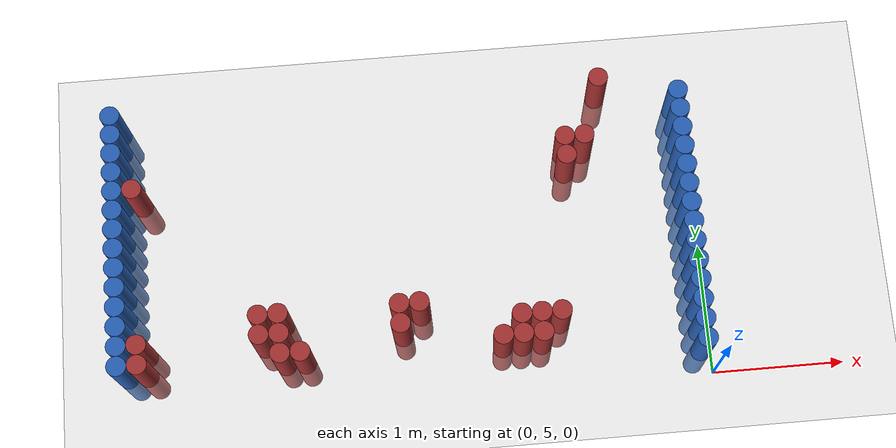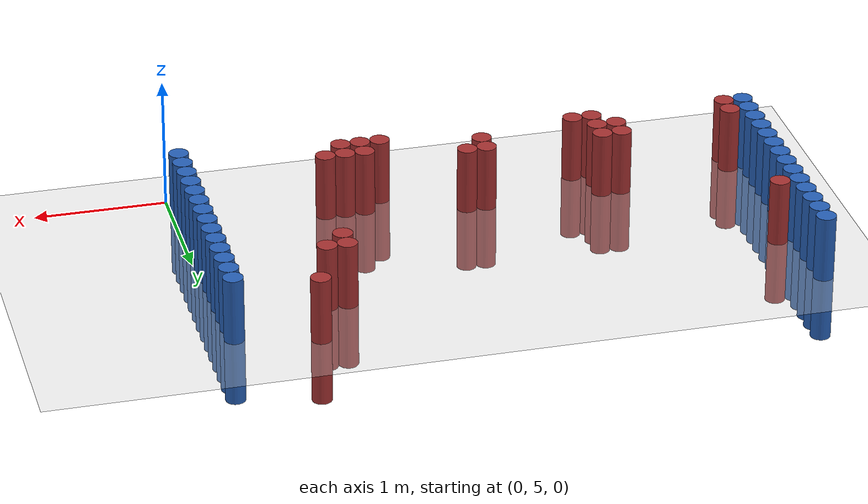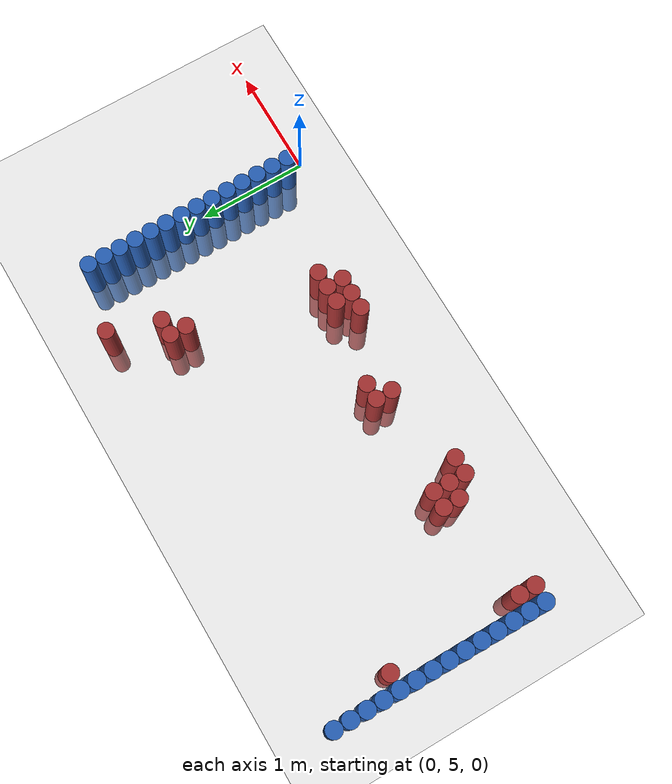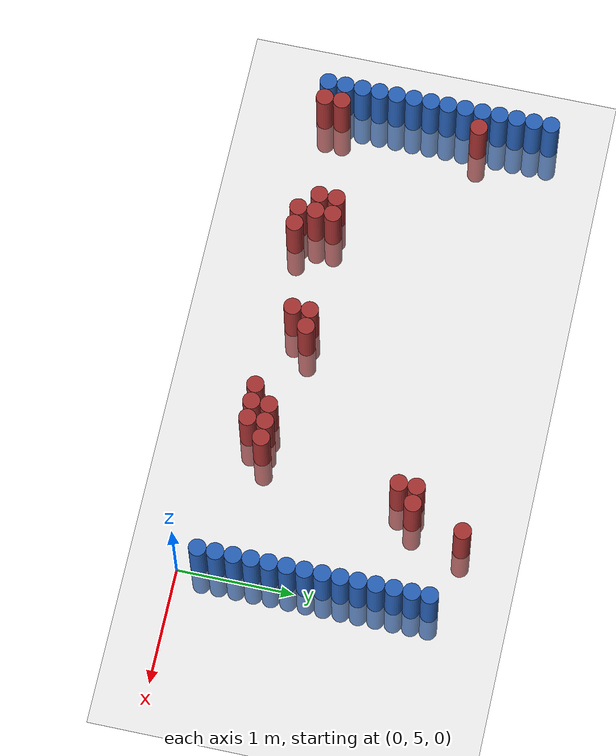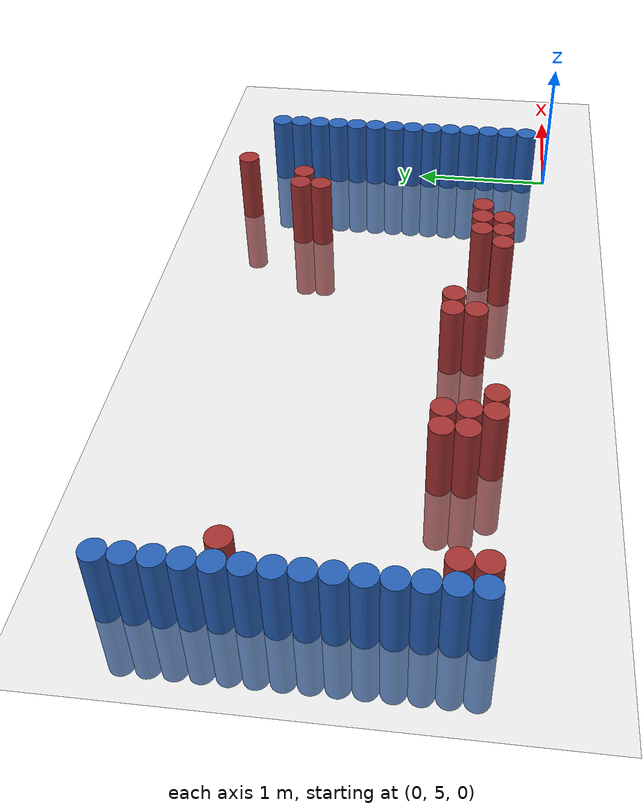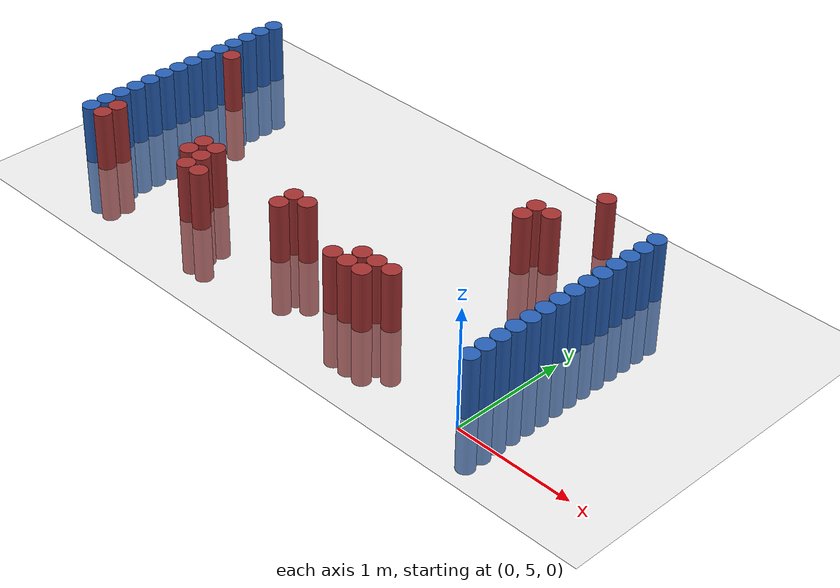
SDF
<sdf version="1.6">
 <world name="default">
  <model name="ground_plane">
   <static>1</static>
   <link name="link">
    <collision name="collision">
     <geometry><plane><normal>0 0 1</normal><size>100 100</size></plane></geometry>
     <surface><friction><ode><mu>100</mu><mu2>50</mu2></ode></friction></surface>
    </collision>
    <visual name="visual">
     <cast_shadows>0</cast_shadows>
     <geometry><plane><normal>0 0 1</normal><size>100 100</size></plane></geometry>
     <material>
      <script><uri>file://media/materials/scripts/gazebo.material</uri><name>Gazebo/Grey</name></script>
     </material>
    </visual>
   </link>
  </model>
  <model name="unit_cylinder_97">
   <static>1</static>
   <pose>-4.425000 5.325000 0.000000 0.000000 0.000000 0.000000</pose>
   <link name="link">
    <inertial>
     <mass>1</mass>
     <inertia><ixx>0.145833</ixx><ixy>0</ixy><ixz>0</ixz><iyy>0.145833</iyy><iyz>0</iyz><izz>0.125</izz></inertia>
    </inertial>
    <collision name="collision">
     <geometry><cylinder><radius>0.075000</radius><length>1</length></cylinder></geometry>
    </collision>
    <visual name="visual">
     <geometry><cylinder><radius>0.075000</radius><length>1</length></cylinder></geometry>
     <material>
      <ambient>0.152000 0.379000 0.720000 1</ambient>
      <diffuse>0.152000 0.379000 0.720000 1</diffuse>
     </material>
     <material>
      <script><name>Gazebo/Grey</name><uri>file://media/materials/scripts/gazebo.material</uri></script>
     </material>
    </visual>
   </link>
  </model>
  <model name="unit_cylinder_98">
   <static>1</static>
   <pose>-4.425000 5.475000 0.000000 0.000000 0.000000 0.000000</pose>
   <link name="link">
    <inertial>
     <mass>1</mass>
     <inertia><ixx>0.145833</ixx><ixy>0</ixy><ixz>0</ixz><iyy>0.145833</iyy><iyz>0</iyz><izz>0.125</izz></inertia>
    </inertial>
    <collision name="collision">
     <geometry><cylinder><radius>0.075000</radius><length>1</length></cylinder></geometry>
    </collision>
    <visual name="visual">
     <geometry><cylinder><radius>0.075000</radius><length>1</length></cylinder></geometry>
     <material>
      <ambient>0.152000 0.379000 0.720000 1</ambient>
      <diffuse>0.152000 0.379000 0.720000 1</diffuse>
     </material>
     <material>
      <script><name>Gazebo/Grey</name><uri>file://media/materials/scripts/gazebo.material</uri></script>
     </material>
    </visual>
   </link>
  </model>
  <model name="unit_cylinder_99">
   <static>1</static>
   <pose>-4.425000 5.625000 0.000000 0.000000 0.000000 0.000000</pose>
   <link name="link">
    <inertial>
     <mass>1</mass>
     <inertia><ixx>0.145833</ixx><ixy>0</ixy><ixz>0</ixz><iyy>0.145833</iyy><iyz>0</iyz><izz>0.125</izz></inertia>
    </inertial>
    <collision name="collision">
     <geometry><cylinder><radius>0.075000</radius><length>1</length></cylinder></geometry>
    </collision>
    <visual name="visual">
     <geometry><cylinder><radius>0.075000</radius><length>1</length></cylinder></geometry>
     <material>
      <ambient>0.152000 0.379000 0.720000 1</ambient>
      <diffuse>0.152000 0.379000 0.720000 1</diffuse>
     </material>
     <material>
      <script><name>Gazebo/Grey</name><uri>file://media/materials/scripts/gazebo.material</uri></script>
     </material>
    </visual>
   </link>
  </model>
  <model name="unit_cylinder_100">
   <static>1</static>
   <pose>-4.425000 5.775000 0.000000 0.000000 0.000000 0.000000</pose>
   <link name="link">
    <inertial>
     <mass>1</mass>
     <inertia><ixx>0.145833</ixx><ixy>0</ixy><ixz>0</ixz><iyy>0.145833</iyy><iyz>0</iyz><izz>0.125</izz></inertia>
    </inertial>
    <collision name="collision">
     <geometry><cylinder><radius>0.075000</radius><length>1</length></cylinder></geometry>
    </collision>
    <visual name="visual">
     <geometry><cylinder><radius>0.075000</radius><length>1</length></cylinder></geometry>
     <material>
      <ambient>0.152000 0.379000 0.720000 1</ambient>
      <diffuse>0.152000 0.379000 0.720000 1</diffuse>
     </material>
     <material>
      <script><name>Gazebo/Grey</name><uri>file://media/materials/scripts/gazebo.material</uri></script>
     </material>
    </visual>
   </link>
  </model>
  <model name="unit_cylinder_101">
   <static>1</static>
   <pose>-4.425000 5.925000 0.000000 0.000000 0.000000 0.000000</pose>
   <link name="link">
    <inertial>
     <mass>1</mass>
     <inertia><ixx>0.145833</ixx><ixy>0</ixy><ixz>0</ixz><iyy>0.145833</iyy><iyz>0</iyz><izz>0.125</izz></inertia>
    </inertial>
    <collision name="collision">
     <geometry><cylinder><radius>0.075000</radius><length>1</length></cylinder></geometry>
    </collision>
    <visual name="visual">
     <geometry><cylinder><radius>0.075000</radius><length>1</length></cylinder></geometry>
     <material>
      <ambient>0.152000 0.379000 0.720000 1</ambient>
      <diffuse>0.152000 0.379000 0.720000 1</diffuse>
     </material>
     <material>
      <script><name>Gazebo/Grey</name><uri>file://media/materials/scripts/gazebo.material</uri></script>
     </material>
    </visual>
   </link>
  </model>
  <model name="unit_cylinder_102">
   <static>1</static>
   <pose>-4.425000 6.075000 0.000000 0.000000 0.000000 0.000000</pose>
   <link name="link">
    <inertial>
     <mass>1</mass>
     <inertia><ixx>0.145833</ixx><ixy>0</ixy><ixz>0</ixz><iyy>0.145833</iyy><iyz>0</iyz><izz>0.125</izz></inertia>
    </inertial>
    <collision name="collision">
     <geometry><cylinder><radius>0.075000</radius><length>1</length></cylinder></geometry>
    </collision>
    <visual name="visual">
     <geometry><cylinder><radius>0.075000</radius><length>1</length></cylinder></geometry>
     <material>
      <ambient>0.152000 0.379000 0.720000 1</ambient>
      <diffuse>0.152000 0.379000 0.720000 1</diffuse>
     </material>
     <material>
      <script><name>Gazebo/Grey</name><uri>file://media/materials/scripts/gazebo.material</uri></script>
     </material>
    </visual>
   </link>
  </model>
  <model name="unit_cylinder_103">
   <static>1</static>
   <pose>-4.425000 6.225000 0.000000 0.000000 0.000000 0.000000</pose>
   <link name="link">
    <inertial>
     <mass>1</mass>
     <inertia><ixx>0.145833</ixx><ixy>0</ixy><ixz>0</ixz><iyy>0.145833</iyy><iyz>0</iyz><izz>0.125</izz></inertia>
    </inertial>
    <collision name="collision">
     <geometry><cylinder><radius>0.075000</radius><length>1</length></cylinder></geometry>
    </collision>
    <visual name="visual">
     <geometry><cylinder><radius>0.075000</radius><length>1</length></cylinder></geometry>
     <material>
      <ambient>0.152000 0.379000 0.720000 1</ambient>
      <diffuse>0.152000 0.379000 0.720000 1</diffuse>
     </material>
     <material>
      <script><name>Gazebo/Grey</name><uri>file://media/materials/scripts/gazebo.material</uri></script>
     </material>
    </visual>
   </link>
  </model>
  <model name="unit_cylinder_104">
   <static>1</static>
   <pose>-4.425000 6.375000 0.000000 0.000000 0.000000 0.000000</pose>
   <link name="link">
    <inertial>
     <mass>1</mass>
     <inertia><ixx>0.145833</ixx><ixy>0</ixy><ixz>0</ixz><iyy>0.145833</iyy><iyz>0</iyz><izz>0.125</izz></inertia>
    </inertial>
    <collision name="collision">
     <geometry><cylinder><radius>0.075000</radius><length>1</length></cylinder></geometry>
    </collision>
    <visual name="visual">
     <geometry><cylinder><radius>0.075000</radius><length>1</length></cylinder></geometry>
     <material>
      <ambient>0.152000 0.379000 0.720000 1</ambient>
      <diffuse>0.152000 0.379000 0.720000 1</diffuse>
     </material>
     <material>
      <script><name>Gazebo/Grey</name><uri>file://media/materials/scripts/gazebo.material</uri></script>
     </material>
    </visual>
   </link>
  </model>
  <model name="unit_cylinder_105">
   <static>1</static>
   <pose>-4.425000 6.525000 0.000000 0.000000 0.000000 0.000000</pose>
   <link name="link">
    <inertial>
     <mass>1</mass>
     <inertia><ixx>0.145833</ixx><ixy>0</ixy><ixz>0</ixz><iyy>0.145833</iyy><iyz>0</iyz><izz>0.125</izz></inertia>
    </inertial>
    <collision name="collision">
     <geometry><cylinder><radius>0.075000</radius><length>1</length></cylinder></geometry>
    </collision>
    <visual name="visual">
     <geometry><cylinder><radius>0.075000</radius><length>1</length></cylinder></geometry>
     <material>
      <ambient>0.152000 0.379000 0.720000 1</ambient>
      <diffuse>0.152000 0.379000 0.720000 1</diffuse>
     </material>
     <material>
      <script><name>Gazebo/Grey</name><uri>file://media/materials/scripts/gazebo.material</uri></script>
     </material>
    </visual>
   </link>
  </model>
  <model name="unit_cylinder_106">
   <static>1</static>
   <pose>-4.425000 6.675000 0.000000 0.000000 0.000000 0.000000</pose>
   <link name="link">
    <inertial>
     <mass>1</mass>
     <inertia><ixx>0.145833</ixx><ixy>0</ixy><ixz>0</ixz><iyy>0.145833</iyy><iyz>0</iyz><izz>0.125</izz></inertia>
    </inertial>
    <collision name="collision">
     <geometry><cylinder><radius>0.075000</radius><length>1</length></cylinder></geometry>
    </collision>
    <visual name="visual">
     <geometry><cylinder><radius>0.075000</radius><length>1</length></cylinder></geometry>
     <material>
      <ambient>0.152000 0.379000 0.720000 1</ambient>
      <diffuse>0.152000 0.379000 0.720000 1</diffuse>
     </material>
     <material>
      <script><name>Gazebo/Grey</name><uri>file://media/materials/scripts/gazebo.material</uri></script>
     </material>
    </visual>
   </link>
  </model>
  <model name="unit_cylinder_107">
   <static>1</static>
   <pose>-4.425000 6.825000 0.000000 0.000000 0.000000 0.000000</pose>
   <link name="link">
    <inertial>
     <mass>1</mass>
     <inertia><ixx>0.145833</ixx><ixy>0</ixy><ixz>0</ixz><iyy>0.145833</iyy><iyz>0</iyz><izz>0.125</izz></inertia>
    </inertial>
    <collision name="collision">
     <geometry><cylinder><radius>0.075000</radius><length>1</length></cylinder></geometry>
    </collision>
    <visual name="visual">
     <geometry><cylinder><radius>0.075000</radius><length>1</length></cylinder></geometry>
     <material>
      <ambient>0.152000 0.379000 0.720000 1</ambient>
      <diffuse>0.152000 0.379000 0.720000 1</diffuse>
     </material>
     <material>
      <script><name>Gazebo/Grey</name><uri>file://media/materials/scripts/gazebo.material</uri></script>
     </material>
    </visual>
   </link>
  </model>
  <model name="unit_cylinder_108">
   <static>1</static>
   <pose>-4.425000 6.975000 0.000000 0.000000 0.000000 0.000000</pose>
   <link name="link">
    <inertial>
     <mass>1</mass>
     <inertia><ixx>0.145833</ixx><ixy>0</ixy><ixz>0</ixz><iyy>0.145833</iyy><iyz>0</iyz><izz>0.125</izz></inertia>
    </inertial>
    <collision name="collision">
     <geometry><cylinder><radius>0.075000</radius><length>1</length></cylinder></geometry>
    </collision>
    <visual name="visual">
     <geometry><cylinder><radius>0.075000</radius><length>1</length></cylinder></geometry>
     <material>
      <ambient>0.152000 0.379000 0.720000 1</ambient>
      <diffuse>0.152000 0.379000 0.720000 1</diffuse>
     </material>
     <material>
      <script><name>Gazebo/Grey</name><uri>file://media/materials/scripts/gazebo.material</uri></script>
     </material>
    </visual>
   </link>
  </model>
  <model name="unit_cylinder_109">
   <static>1</static>
   <pose>-4.425000 7.125000 0.000000 0.000000 0.000000 0.000000</pose>
   <link name="link">
    <inertial>
     <mass>1</mass>
     <inertia><ixx>0.145833</ixx><ixy>0</ixy><ixz>0</ixz><iyy>0.145833</iyy><iyz>0</iyz><izz>0.125</izz></inertia>
    </inertial>
    <collision name="collision">
     <geometry><cylinder><radius>0.075000</radius><length>1</length></cylinder></geometry>
    </collision>
    <visual name="visual">
     <geometry><cylinder><radius>0.075000</radius><length>1</length></cylinder></geometry>
     <material>
      <ambient>0.152000 0.379000 0.720000 1</ambient>
      <diffuse>0.152000 0.379000 0.720000 1</diffuse>
     </material>
     <material>
      <script><name>Gazebo/Grey</name><uri>file://media/materials/scripts/gazebo.material</uri></script>
     </material>
    </visual>
   </link>
  </model>
  <model name="unit_cylinder_110">
   <static>1</static>
   <pose>-4.425000 7.275000 0.000000 0.000000 0.000000 0.000000</pose>
   <link name="link">
    <inertial>
     <mass>1</mass>
     <inertia><ixx>0.145833</ixx><ixy>0</ixy><ixz>0</ixz><iyy>0.145833</iyy><iyz>0</iyz><izz>0.125</izz></inertia>
    </inertial>
    <collision name="collision">
     <geometry><cylinder><radius>0.075000</radius><length>1</length></cylinder></geometry>
    </collision>
    <visual name="visual">
     <geometry><cylinder><radius>0.075000</radius><length>1</length></cylinder></geometry>
     <material>
      <ambient>0.152000 0.379000 0.720000 1</ambient>
      <diffuse>0.152000 0.379000 0.720000 1</diffuse>
     </material>
     <material>
      <script><name>Gazebo/Grey</name><uri>file://media/materials/scripts/gazebo.material</uri></script>
     </material>
    </visual>
   </link>
  </model>
  <model name="unit_cylinder_126">
   <static>1</static>
   <pose>-4.275000 5.325000 0.000000 0.000000 0.000000 0.000000</pose>
   <link name="link">
    <inertial>
     <mass>1</mass>
     <inertia><ixx>0.145833</ixx><ixy>0</ixy><ixz>0</ixz><iyy>0.145833</iyy><iyz>0</iyz><izz>0.125</izz></inertia>
    </inertial>
    <collision name="collision">
     <geometry><cylinder><radius>0.075000</radius><length>1</length></cylinder></geometry>
    </collision>
    <visual name="visual">
     <geometry><cylinder><radius>0.075000</radius><length>1</length></cylinder></geometry>
     <material>
      <ambient>0.648000 0.192000 0.192000 1</ambient>
      <diffuse>0.648000 0.192000 0.192000 1</diffuse>
     </material>
     <material>
      <script><name>Gazebo/Grey</name><uri>file://media/materials/scripts/gazebo.material</uri></script>
     </material>
    </visual>
   </link>
  </model>
  <model name="unit_cylinder_127">
   <static>1</static>
   <pose>-4.275000 5.475000 0.000000 0.000000 0.000000 0.000000</pose>
   <link name="link">
    <inertial>
     <mass>1</mass>
     <inertia><ixx>0.145833</ixx><ixy>0</ixy><ixz>0</ixz><iyy>0.145833</iyy><iyz>0</iyz><izz>0.125</izz></inertia>
    </inertial>
    <collision name="collision">
     <geometry><cylinder><radius>0.075000</radius><length>1</length></cylinder></geometry>
    </collision>
    <visual name="visual">
     <geometry><cylinder><radius>0.075000</radius><length>1</length></cylinder></geometry>
     <material>
      <ambient>0.648000 0.192000 0.192000 1</ambient>
      <diffuse>0.648000 0.192000 0.192000 1</diffuse>
     </material>
     <material>
      <script><name>Gazebo/Grey</name><uri>file://media/materials/scripts/gazebo.material</uri></script>
     </material>
    </visual>
   </link>
  </model>
  <model name="unit_cylinder_128">
   <static>1</static>
   <pose>-4.275000 6.675000 0.000000 0.000000 0.000000 0.000000</pose>
   <link name="link">
    <inertial>
     <mass>1</mass>
     <inertia><ixx>0.145833</ixx><ixy>0</ixy><ixz>0</ixz><iyy>0.145833</iyy><iyz>0</iyz><izz>0.125</izz></inertia>
    </inertial>
    <collision name="collision">
     <geometry><cylinder><radius>0.075000</radius><length>1</length></cylinder></geometry>
    </collision>
    <visual name="visual">
     <geometry><cylinder><radius>0.075000</radius><length>1</length></cylinder></geometry>
     <material>
      <ambient>0.648000 0.192000 0.192000 1</ambient>
      <diffuse>0.648000 0.192000 0.192000 1</diffuse>
     </material>
     <material>
      <script><name>Gazebo/Grey</name><uri>file://media/materials/scripts/gazebo.material</uri></script>
     </material>
    </visual>
   </link>
  </model>
  <model name="unit_cylinder_142">
   <static>1</static>
   <pose>-3.375000 5.475000 0.000000 0.000000 0.000000 0.000000</pose>
   <link name="link">
    <inertial>
     <mass>1</mass>
     <inertia><ixx>0.145833</ixx><ixy>0</ixy><ixz>0</ixz><iyy>0.145833</iyy><iyz>0</iyz><izz>0.125</izz></inertia>
    </inertial>
    <collision name="collision">
     <geometry><cylinder><radius>0.075000</radius><length>1</length></cylinder></geometry>
    </collision>
    <visual name="visual">
     <geometry><cylinder><radius>0.075000</radius><length>1</length></cylinder></geometry>
     <material>
      <ambient>0.648000 0.192000 0.192000 1</ambient>
      <diffuse>0.648000 0.192000 0.192000 1</diffuse>
     </material>
     <material>
      <script><name>Gazebo/Grey</name><uri>file://media/materials/scripts/gazebo.material</uri></script>
     </material>
    </visual>
   </link>
  </model>
  <model name="unit_cylinder_143">
   <static>1</static>
   <pose>-3.375000 5.625000 0.000000 0.000000 0.000000 0.000000</pose>
   <link name="link">
    <inertial>
     <mass>1</mass>
     <inertia><ixx>0.145833</ixx><ixy>0</ixy><ixz>0</ixz><iyy>0.145833</iyy><iyz>0</iyz><izz>0.125</izz></inertia>
    </inertial>
    <collision name="collision">
     <geometry><cylinder><radius>0.075000</radius><length>1</length></cylinder></geometry>
    </collision>
    <visual name="visual">
     <geometry><cylinder><radius>0.075000</radius><length>1</length></cylinder></geometry>
     <material>
      <ambient>0.648000 0.192000 0.192000 1</ambient>
      <diffuse>0.648000 0.192000 0.192000 1</diffuse>
     </material>
     <material>
      <script><name>Gazebo/Grey</name><uri>file://media/materials/scripts/gazebo.material</uri></script>
     </material>
    </visual>
   </link>
  </model>
  <model name="unit_cylinder_145">
   <static>1</static>
   <pose>-3.225000 5.325000 0.000000 0.000000 0.000000 0.000000</pose>
   <link name="link">
    <inertial>
     <mass>1</mass>
     <inertia><ixx>0.145833</ixx><ixy>0</ixy><ixz>0</ixz><iyy>0.145833</iyy><iyz>0</iyz><izz>0.125</izz></inertia>
    </inertial>
    <collision name="collision">
     <geometry><cylinder><radius>0.075000</radius><length>1</length></cylinder></geometry>
    </collision>
    <visual name="visual">
     <geometry><cylinder><radius>0.075000</radius><length>1</length></cylinder></geometry>
     <material>
      <ambient>0.648000 0.192000 0.192000 1</ambient>
      <diffuse>0.648000 0.192000 0.192000 1</diffuse>
     </material>
     <material>
      <script><name>Gazebo/Grey</name><uri>file://media/materials/scripts/gazebo.material</uri></script>
     </material>
    </visual>
   </link>
  </model>
  <model name="unit_cylinder_146">
   <static>1</static>
   <pose>-3.225000 5.475000 0.000000 0.000000 0.000000 0.000000</pose>
   <link name="link">
    <inertial>
     <mass>1</mass>
     <inertia><ixx>0.145833</ixx><ixy>0</ixy><ixz>0</ixz><iyy>0.145833</iyy><iyz>0</iyz><izz>0.125</izz></inertia>
    </inertial>
    <collision name="collision">
     <geometry><cylinder><radius>0.075000</radius><length>1</length></cylinder></geometry>
    </collision>
    <visual name="visual">
     <geometry><cylinder><radius>0.075000</radius><length>1</length></cylinder></geometry>
     <material>
      <ambient>0.648000 0.192000 0.192000 1</ambient>
      <diffuse>0.648000 0.192000 0.192000 1</diffuse>
     </material>
     <material>
      <script><name>Gazebo/Grey</name><uri>file://media/materials/scripts/gazebo.material</uri></script>
     </material>
    </visual>
   </link>
  </model>
  <model name="unit_cylinder_147">
   <static>1</static>
   <pose>-3.225000 5.625000 0.000000 0.000000 0.000000 0.000000</pose>
   <link name="link">
    <inertial>
     <mass>1</mass>
     <inertia><ixx>0.145833</ixx><ixy>0</ixy><ixz>0</ixz><iyy>0.145833</iyy><iyz>0</iyz><izz>0.125</izz></inertia>
    </inertial>
    <collision name="collision">
     <geometry><cylinder><radius>0.075000</radius><length>1</length></cylinder></geometry>
    </collision>
    <visual name="visual">
     <geometry><cylinder><radius>0.075000</radius><length>1</length></cylinder></geometry>
     <material>
      <ambient>0.648000 0.192000 0.192000 1</ambient>
      <diffuse>0.648000 0.192000 0.192000 1</diffuse>
     </material>
     <material>
      <script><name>Gazebo/Grey</name><uri>file://media/materials/scripts/gazebo.material</uri></script>
     </material>
    </visual>
   </link>
  </model>
  <model name="unit_cylinder_149">
   <static>1</static>
   <pose>-3.075000 5.325000 0.000000 0.000000 0.000000 0.000000</pose>
   <link name="link">
    <inertial>
     <mass>1</mass>
     <inertia><ixx>0.145833</ixx><ixy>0</ixy><ixz>0</ixz><iyy>0.145833</iyy><iyz>0</iyz><izz>0.125</izz></inertia>
    </inertial>
    <collision name="collision">
     <geometry><cylinder><radius>0.075000</radius><length>1</length></cylinder></geometry>
    </collision>
    <visual name="visual">
     <geometry><cylinder><radius>0.075000</radius><length>1</length></cylinder></geometry>
     <material>
      <ambient>0.648000 0.192000 0.192000 1</ambient>
      <diffuse>0.648000 0.192000 0.192000 1</diffuse>
     </material>
     <material>
      <script><name>Gazebo/Grey</name><uri>file://media/materials/scripts/gazebo.material</uri></script>
     </material>
    </visual>
   </link>
  </model>
  <model name="unit_cylinder_150">
   <static>1</static>
   <pose>-2.325000 5.475000 0.000000 0.000000 0.000000 0.000000</pose>
   <link name="link">
    <inertial>
     <mass>1</mass>
     <inertia><ixx>0.145833</ixx><ixy>0</ixy><ixz>0</ixz><iyy>0.145833</iyy><iyz>0</iyz><izz>0.125</izz></inertia>
    </inertial>
    <collision name="collision">
     <geometry><cylinder><radius>0.075000</radius><length>1</length></cylinder></geometry>
    </collision>
    <visual name="visual">
     <geometry><cylinder><radius>0.075000</radius><length>1</length></cylinder></geometry>
     <material>
      <ambient>0.648000 0.192000 0.192000 1</ambient>
      <diffuse>0.648000 0.192000 0.192000 1</diffuse>
     </material>
     <material>
      <script><name>Gazebo/Grey</name><uri>file://media/materials/scripts/gazebo.material</uri></script>
     </material>
    </visual>
   </link>
  </model>
  <model name="unit_cylinder_151">
   <static>1</static>
   <pose>-2.325000 5.625000 0.000000 0.000000 0.000000 0.000000</pose>
   <link name="link">
    <inertial>
     <mass>1</mass>
     <inertia><ixx>0.145833</ixx><ixy>0</ixy><ixz>0</ixz><iyy>0.145833</iyy><iyz>0</iyz><izz>0.125</izz></inertia>
    </inertial>
    <collision name="collision">
     <geometry><cylinder><radius>0.075000</radius><length>1</length></cylinder></geometry>
    </collision>
    <visual name="visual">
     <geometry><cylinder><radius>0.075000</radius><length>1</length></cylinder></geometry>
     <material>
      <ambient>0.648000 0.192000 0.192000 1</ambient>
      <diffuse>0.648000 0.192000 0.192000 1</diffuse>
     </material>
     <material>
      <script><name>Gazebo/Grey</name><uri>file://media/materials/scripts/gazebo.material</uri></script>
     </material>
    </visual>
   </link>
  </model>
  <model name="unit_cylinder_152">
   <static>1</static>
   <pose>-2.175000 5.625000 0.000000 0.000000 0.000000 0.000000</pose>
   <link name="link">
    <inertial>
     <mass>1</mass>
     <inertia><ixx>0.145833</ixx><ixy>0</ixy><ixz>0</ixz><iyy>0.145833</iyy><iyz>0</iyz><izz>0.125</izz></inertia>
    </inertial>
    <collision name="collision">
     <geometry><cylinder><radius>0.075000</radius><length>1</length></cylinder></geometry>
    </collision>
    <visual name="visual">
     <geometry><cylinder><radius>0.075000</radius><length>1</length></cylinder></geometry>
     <material>
      <ambient>0.648000 0.192000 0.192000 1</ambient>
      <diffuse>0.648000 0.192000 0.192000 1</diffuse>
     </material>
     <material>
      <script><name>Gazebo/Grey</name><uri>file://media/materials/scripts/gazebo.material</uri></script>
     </material>
    </visual>
   </link>
  </model>
  <model name="unit_cylinder_154">
   <static>1</static>
   <pose>-1.575000 5.325000 0.000000 0.000000 0.000000 0.000000</pose>
   <link name="link">
    <inertial>
     <mass>1</mass>
     <inertia><ixx>0.145833</ixx><ixy>0</ixy><ixz>0</ixz><iyy>0.145833</iyy><iyz>0</iyz><izz>0.125</izz></inertia>
    </inertial>
    <collision name="collision">
     <geometry><cylinder><radius>0.075000</radius><length>1</length></cylinder></geometry>
    </collision>
    <visual name="visual">
     <geometry><cylinder><radius>0.075000</radius><length>1</length></cylinder></geometry>
     <material>
      <ambient>0.648000 0.192000 0.192000 1</ambient>
      <diffuse>0.648000 0.192000 0.192000 1</diffuse>
     </material>
     <material>
      <script><name>Gazebo/Grey</name><uri>file://media/materials/scripts/gazebo.material</uri></script>
     </material>
    </visual>
   </link>
  </model>
  <model name="unit_cylinder_155">
   <static>1</static>
   <pose>-1.425000 5.325000 0.000000 0.000000 0.000000 0.000000</pose>
   <link name="link">
    <inertial>
     <mass>1</mass>
     <inertia><ixx>0.145833</ixx><ixy>0</ixy><ixz>0</ixz><iyy>0.145833</iyy><iyz>0</iyz><izz>0.125</izz></inertia>
    </inertial>
    <collision name="collision">
     <geometry><cylinder><radius>0.075000</radius><length>1</length></cylinder></geometry>
    </collision>
    <visual name="visual">
     <geometry><cylinder><radius>0.075000</radius><length>1</length></cylinder></geometry>
     <material>
      <ambient>0.648000 0.192000 0.192000 1</ambient>
      <diffuse>0.648000 0.192000 0.192000 1</diffuse>
     </material>
     <material>
      <script><name>Gazebo/Grey</name><uri>file://media/materials/scripts/gazebo.material</uri></script>
     </material>
    </visual>
   </link>
  </model>
  <model name="unit_cylinder_156">
   <static>1</static>
   <pose>-1.425000 5.475000 0.000000 0.000000 0.000000 0.000000</pose>
   <link name="link">
    <inertial>
     <mass>1</mass>
     <inertia><ixx>0.145833</ixx><ixy>0</ixy><ixz>0</ixz><iyy>0.145833</iyy><iyz>0</iyz><izz>0.125</izz></inertia>
    </inertial>
    <collision name="collision">
     <geometry><cylinder><radius>0.075000</radius><length>1</length></cylinder></geometry>
    </collision>
    <visual name="visual">
     <geometry><cylinder><radius>0.075000</radius><length>1</length></cylinder></geometry>
     <material>
      <ambient>0.648000 0.192000 0.192000 1</ambient>
      <diffuse>0.648000 0.192000 0.192000 1</diffuse>
     </material>
     <material>
      <script><name>Gazebo/Grey</name><uri>file://media/materials/scripts/gazebo.material</uri></script>
     </material>
    </visual>
   </link>
  </model>
  <model name="unit_cylinder_157">
   <static>1</static>
   <pose>-1.275000 5.325000 0.000000 0.000000 0.000000 0.000000</pose>
   <link name="link">
    <inertial>
     <mass>1</mass>
     <inertia><ixx>0.145833</ixx><ixy>0</ixy><ixz>0</ixz><iyy>0.145833</iyy><iyz>0</iyz><izz>0.125</izz></inertia>
    </inertial>
    <collision name="collision">
     <geometry><cylinder><radius>0.075000</radius><length>1</length></cylinder></geometry>
    </collision>
    <visual name="visual">
     <geometry><cylinder><radius>0.075000</radius><length>1</length></cylinder></geometry>
     <material>
      <ambient>0.648000 0.192000 0.192000 1</ambient>
      <diffuse>0.648000 0.192000 0.192000 1</diffuse>
     </material>
     <material>
      <script><name>Gazebo/Grey</name><uri>file://media/materials/scripts/gazebo.material</uri></script>
     </material>
    </visual>
   </link>
  </model>
  <model name="unit_cylinder_158">
   <static>1</static>
   <pose>-1.275000 5.475000 0.000000 0.000000 0.000000 0.000000</pose>
   <link name="link">
    <inertial>
     <mass>1</mass>
     <inertia><ixx>0.145833</ixx><ixy>0</ixy><ixz>0</ixz><iyy>0.145833</iyy><iyz>0</iyz><izz>0.125</izz></inertia>
    </inertial>
    <collision name="collision">
     <geometry><cylinder><radius>0.075000</radius><length>1</length></cylinder></geometry>
    </collision>
    <visual name="visual">
     <geometry><cylinder><radius>0.075000</radius><length>1</length></cylinder></geometry>
     <material>
      <ambient>0.648000 0.192000 0.192000 1</ambient>
      <diffuse>0.648000 0.192000 0.192000 1</diffuse>
     </material>
     <material>
      <script><name>Gazebo/Grey</name><uri>file://media/materials/scripts/gazebo.material</uri></script>
     </material>
    </visual>
   </link>
  </model>
  <model name="unit_cylinder_159">
   <static>1</static>
   <pose>-1.125000 5.475000 0.000000 0.000000 0.000000 0.000000</pose>
   <link name="link">
    <inertial>
     <mass>1</mass>
     <inertia><ixx>0.145833</ixx><ixy>0</ixy><ixz>0</ixz><iyy>0.145833</iyy><iyz>0</iyz><izz>0.125</izz></inertia>
    </inertial>
    <collision name="collision">
     <geometry><cylinder><radius>0.075000</radius><length>1</length></cylinder></geometry>
    </collision>
    <visual name="visual">
     <geometry><cylinder><radius>0.075000</radius><length>1</length></cylinder></geometry>
     <material>
      <ambient>0.648000 0.192000 0.192000 1</ambient>
      <diffuse>0.648000 0.192000 0.192000 1</diffuse>
     </material>
     <material>
      <script><name>Gazebo/Grey</name><uri>file://media/materials/scripts/gazebo.material</uri></script>
     </material>
    </visual>
   </link>
  </model>
  <model name="unit_cylinder_160">
   <static>1</static>
   <pose>-0.975000 6.675000 0.000000 0.000000 0.000000 0.000000</pose>
   <link name="link">
    <inertial>
     <mass>1</mass>
     <inertia><ixx>0.145833</ixx><ixy>0</ixy><ixz>0</ixz><iyy>0.145833</iyy><iyz>0</iyz><izz>0.125</izz></inertia>
    </inertial>
    <collision name="collision">
     <geometry><cylinder><radius>0.075000</radius><length>1</length></cylinder></geometry>
    </collision>
    <visual name="visual">
     <geometry><cylinder><radius>0.075000</radius><length>1</length></cylinder></geometry>
     <material>
      <ambient>0.648000 0.192000 0.192000 1</ambient>
      <diffuse>0.648000 0.192000 0.192000 1</diffuse>
     </material>
     <material>
      <script><name>Gazebo/Grey</name><uri>file://media/materials/scripts/gazebo.material</uri></script>
     </material>
    </visual>
   </link>
  </model>
  <model name="unit_cylinder_161">
   <static>1</static>
   <pose>-0.975000 6.825000 0.000000 0.000000 0.000000 0.000000</pose>
   <link name="link">
    <inertial>
     <mass>1</mass>
     <inertia><ixx>0.145833</ixx><ixy>0</ixy><ixz>0</ixz><iyy>0.145833</iyy><iyz>0</iyz><izz>0.125</izz></inertia>
    </inertial>
    <collision name="collision">
     <geometry><cylinder><radius>0.075000</radius><length>1</length></cylinder></geometry>
    </collision>
    <visual name="visual">
     <geometry><cylinder><radius>0.075000</radius><length>1</length></cylinder></geometry>
     <material>
      <ambient>0.648000 0.192000 0.192000 1</ambient>
      <diffuse>0.648000 0.192000 0.192000 1</diffuse>
     </material>
     <material>
      <script><name>Gazebo/Grey</name><uri>file://media/materials/scripts/gazebo.material</uri></script>
     </material>
    </visual>
   </link>
  </model>
  <model name="unit_cylinder_162">
   <static>1</static>
   <pose>-0.825000 6.825000 0.000000 0.000000 0.000000 0.000000</pose>
   <link name="link">
    <inertial>
     <mass>1</mass>
     <inertia><ixx>0.145833</ixx><ixy>0</ixy><ixz>0</ixz><iyy>0.145833</iyy><iyz>0</iyz><izz>0.125</izz></inertia>
    </inertial>
    <collision name="collision">
     <geometry><cylinder><radius>0.075000</radius><length>1</length></cylinder></geometry>
    </collision>
    <visual name="visual">
     <geometry><cylinder><radius>0.075000</radius><length>1</length></cylinder></geometry>
     <material>
      <ambient>0.648000 0.192000 0.192000 1</ambient>
      <diffuse>0.648000 0.192000 0.192000 1</diffuse>
     </material>
     <material>
      <script><name>Gazebo/Grey</name><uri>file://media/materials/scripts/gazebo.material</uri></script>
     </material>
    </visual>
   </link>
  </model>
  <model name="unit_cylinder_164">
   <static>1</static>
   <pose>-0.675000 7.275000 0.000000 0.000000 0.000000 0.000000</pose>
   <link name="link">
    <inertial>
     <mass>1</mass>
     <inertia><ixx>0.145833</ixx><ixy>0</ixy><ixz>0</ixz><iyy>0.145833</iyy><iyz>0</iyz><izz>0.125</izz></inertia>
    </inertial>
    <collision name="collision">
     <geometry><cylinder><radius>0.075000</radius><length>1</length></cylinder></geometry>
    </collision>
    <visual name="visual">
     <geometry><cylinder><radius>0.075000</radius><length>1</length></cylinder></geometry>
     <material>
      <ambient>0.648000 0.192000 0.192000 1</ambient>
      <diffuse>0.648000 0.192000 0.192000 1</diffuse>
     </material>
     <material>
      <script><name>Gazebo/Grey</name><uri>file://media/materials/scripts/gazebo.material</uri></script>
     </material>
    </visual>
   </link>
  </model>
  <model name="unit_cylinder_168">
   <static>1</static>
   <pose>-0.075000 5.175000 0.000000 0.000000 0.000000 0.000000</pose>
   <link name="link">
    <inertial>
     <mass>1</mass>
     <inertia><ixx>0.145833</ixx><ixy>0</ixy><ixz>0</ixz><iyy>0.145833</iyy><iyz>0</iyz><izz>0.125</izz></inertia>
    </inertial>
    <collision name="collision">
     <geometry><cylinder><radius>0.075000</radius><length>1</length></cylinder></geometry>
    </collision>
    <visual name="visual">
     <geometry><cylinder><radius>0.075000</radius><length>1</length></cylinder></geometry>
     <material>
      <ambient>0.152000 0.379000 0.720000 1</ambient>
      <diffuse>0.152000 0.379000 0.720000 1</diffuse>
     </material>
     <material>
      <script><name>Gazebo/Grey</name><uri>file://media/materials/scripts/gazebo.material</uri></script>
     </material>
    </visual>
   </link>
  </model>
  <model name="unit_cylinder_169">
   <static>1</static>
   <pose>-0.075000 5.325000 0.000000 0.000000 0.000000 0.000000</pose>
   <link name="link">
    <inertial>
     <mass>1</mass>
     <inertia><ixx>0.145833</ixx><ixy>0</ixy><ixz>0</ixz><iyy>0.145833</iyy><iyz>0</iyz><izz>0.125</izz></inertia>
    </inertial>
    <collision name="collision">
     <geometry><cylinder><radius>0.075000</radius><length>1</length></cylinder></geometry>
    </collision>
    <visual name="visual">
     <geometry><cylinder><radius>0.075000</radius><length>1</length></cylinder></geometry>
     <material>
      <ambient>0.152000 0.379000 0.720000 1</ambient>
      <diffuse>0.152000 0.379000 0.720000 1</diffuse>
     </material>
     <material>
      <script><name>Gazebo/Grey</name><uri>file://media/materials/scripts/gazebo.material</uri></script>
     </material>
    </visual>
   </link>
  </model>
  <model name="unit_cylinder_170">
   <static>1</static>
   <pose>-0.075000 5.475000 0.000000 0.000000 0.000000 0.000000</pose>
   <link name="link">
    <inertial>
     <mass>1</mass>
     <inertia><ixx>0.145833</ixx><ixy>0</ixy><ixz>0</ixz><iyy>0.145833</iyy><iyz>0</iyz><izz>0.125</izz></inertia>
    </inertial>
    <collision name="collision">
     <geometry><cylinder><radius>0.075000</radius><length>1</length></cylinder></geometry>
    </collision>
    <visual name="visual">
     <geometry><cylinder><radius>0.075000</radius><length>1</length></cylinder></geometry>
     <material>
      <ambient>0.152000 0.379000 0.720000 1</ambient>
      <diffuse>0.152000 0.379000 0.720000 1</diffuse>
     </material>
     <material>
      <script><name>Gazebo/Grey</name><uri>file://media/materials/scripts/gazebo.material</uri></script>
     </material>
    </visual>
   </link>
  </model>
  <model name="unit_cylinder_171">
   <static>1</static>
   <pose>-0.075000 5.625000 0.000000 0.000000 0.000000 0.000000</pose>
   <link name="link">
    <inertial>
     <mass>1</mass>
     <inertia><ixx>0.145833</ixx><ixy>0</ixy><ixz>0</ixz><iyy>0.145833</iyy><iyz>0</iyz><izz>0.125</izz></inertia>
    </inertial>
    <collision name="collision">
     <geometry><cylinder><radius>0.075000</radius><length>1</length></cylinder></geometry>
    </collision>
    <visual name="visual">
     <geometry><cylinder><radius>0.075000</radius><length>1</length></cylinder></geometry>
     <material>
      <ambient>0.152000 0.379000 0.720000 1</ambient>
      <diffuse>0.152000 0.379000 0.720000 1</diffuse>
     </material>
     <material>
      <script><name>Gazebo/Grey</name><uri>file://media/materials/scripts/gazebo.material</uri></script>
     </material>
    </visual>
   </link>
  </model>
  <model name="unit_cylinder_172">
   <static>1</static>
   <pose>-0.075000 5.775000 0.000000 0.000000 0.000000 0.000000</pose>
   <link name="link">
    <inertial>
     <mass>1</mass>
     <inertia><ixx>0.145833</ixx><ixy>0</ixy><ixz>0</ixz><iyy>0.145833</iyy><iyz>0</iyz><izz>0.125</izz></inertia>
    </inertial>
    <collision name="collision">
     <geometry><cylinder><radius>0.075000</radius><length>1</length></cylinder></geometry>
    </collision>
    <visual name="visual">
     <geometry><cylinder><radius>0.075000</radius><length>1</length></cylinder></geometry>
     <material>
      <ambient>0.152000 0.379000 0.720000 1</ambient>
      <diffuse>0.152000 0.379000 0.720000 1</diffuse>
     </material>
     <material>
      <script><name>Gazebo/Grey</name><uri>file://media/materials/scripts/gazebo.material</uri></script>
     </material>
    </visual>
   </link>
  </model>
  <model name="unit_cylinder_173">
   <static>1</static>
   <pose>-0.075000 5.925000 0.000000 0.000000 0.000000 0.000000</pose>
   <link name="link">
    <inertial>
     <mass>1</mass>
     <inertia><ixx>0.145833</ixx><ixy>0</ixy><ixz>0</ixz><iyy>0.145833</iyy><iyz>0</iyz><izz>0.125</izz></inertia>
    </inertial>
    <collision name="collision">
     <geometry><cylinder><radius>0.075000</radius><length>1</length></cylinder></geometry>
    </collision>
    <visual name="visual">
     <geometry><cylinder><radius>0.075000</radius><length>1</length></cylinder></geometry>
     <material>
      <ambient>0.152000 0.379000 0.720000 1</ambient>
      <diffuse>0.152000 0.379000 0.720000 1</diffuse>
     </material>
     <material>
      <script><name>Gazebo/Grey</name><uri>file://media/materials/scripts/gazebo.material</uri></script>
     </material>
    </visual>
   </link>
  </model>
  <model name="unit_cylinder_174">
   <static>1</static>
   <pose>-0.075000 6.075000 0.000000 0.000000 0.000000 0.000000</pose>
   <link name="link">
    <inertial>
     <mass>1</mass>
     <inertia><ixx>0.145833</ixx><ixy>0</ixy><ixz>0</ixz><iyy>0.145833</iyy><iyz>0</iyz><izz>0.125</izz></inertia>
    </inertial>
    <collision name="collision">
     <geometry><cylinder><radius>0.075000</radius><length>1</length></cylinder></geometry>
    </collision>
    <visual name="visual">
     <geometry><cylinder><radius>0.075000</radius><length>1</length></cylinder></geometry>
     <material>
      <ambient>0.152000 0.379000 0.720000 1</ambient>
      <diffuse>0.152000 0.379000 0.720000 1</diffuse>
     </material>
     <material>
      <script><name>Gazebo/Grey</name><uri>file://media/materials/scripts/gazebo.material</uri></script>
     </material>
    </visual>
   </link>
  </model>
  <model name="unit_cylinder_175">
   <static>1</static>
   <pose>-0.075000 6.225000 0.000000 0.000000 0.000000 0.000000</pose>
   <link name="link">
    <inertial>
     <mass>1</mass>
     <inertia><ixx>0.145833</ixx><ixy>0</ixy><ixz>0</ixz><iyy>0.145833</iyy><iyz>0</iyz><izz>0.125</izz></inertia>
    </inertial>
    <collision name="collision">
     <geometry><cylinder><radius>0.075000</radius><length>1</length></cylinder></geometry>
    </collision>
    <visual name="visual">
     <geometry><cylinder><radius>0.075000</radius><length>1</length></cylinder></geometry>
     <material>
      <ambient>0.152000 0.379000 0.720000 1</ambient>
      <diffuse>0.152000 0.379000 0.720000 1</diffuse>
     </material>
     <material>
      <script><name>Gazebo/Grey</name><uri>file://media/materials/scripts/gazebo.material</uri></script>
     </material>
    </visual>
   </link>
  </model>
  <model name="unit_cylinder_176">
   <static>1</static>
   <pose>-0.075000 6.375000 0.000000 0.000000 0.000000 0.000000</pose>
   <link name="link">
    <inertial>
     <mass>1</mass>
     <inertia><ixx>0.145833</ixx><ixy>0</ixy><ixz>0</ixz><iyy>0.145833</iyy><iyz>0</iyz><izz>0.125</izz></inertia>
    </inertial>
    <collision name="collision">
     <geometry><cylinder><radius>0.075000</radius><length>1</length></cylinder></geometry>
    </collision>
    <visual name="visual">
     <geometry><cylinder><radius>0.075000</radius><length>1</length></cylinder></geometry>
     <material>
      <ambient>0.152000 0.379000 0.720000 1</ambient>
      <diffuse>0.152000 0.379000 0.720000 1</diffuse>
     </material>
     <material>
      <script><name>Gazebo/Grey</name><uri>file://media/materials/scripts/gazebo.material</uri></script>
     </material>
    </visual>
   </link>
  </model>
  <model name="unit_cylinder_177">
   <static>1</static>
   <pose>-0.075000 6.525000 0.000000 0.000000 0.000000 0.000000</pose>
   <link name="link">
    <inertial>
     <mass>1</mass>
     <inertia><ixx>0.145833</ixx><ixy>0</ixy><ixz>0</ixz><iyy>0.145833</iyy><iyz>0</iyz><izz>0.125</izz></inertia>
    </inertial>
    <collision name="collision">
     <geometry><cylinder><radius>0.075000</radius><length>1</length></cylinder></geometry>
    </collision>
    <visual name="visual">
     <geometry><cylinder><radius>0.075000</radius><length>1</length></cylinder></geometry>
     <material>
      <ambient>0.152000 0.379000 0.720000 1</ambient>
      <diffuse>0.152000 0.379000 0.720000 1</diffuse>
     </material>
     <material>
      <script><name>Gazebo/Grey</name><uri>file://media/materials/scripts/gazebo.material</uri></script>
     </material>
    </visual>
   </link>
  </model>
  <model name="unit_cylinder_178">
   <static>1</static>
   <pose>-0.075000 6.675000 0.000000 0.000000 0.000000 0.000000</pose>
   <link name="link">
    <inertial>
     <mass>1</mass>
     <inertia><ixx>0.145833</ixx><ixy>0</ixy><ixz>0</ixz><iyy>0.145833</iyy><iyz>0</iyz><izz>0.125</izz></inertia>
    </inertial>
    <collision name="collision">
     <geometry><cylinder><radius>0.075000</radius><length>1</length></cylinder></geometry>
    </collision>
    <visual name="visual">
     <geometry><cylinder><radius>0.075000</radius><length>1</length></cylinder></geometry>
     <material>
      <ambient>0.152000 0.379000 0.720000 1</ambient>
      <diffuse>0.152000 0.379000 0.720000 1</diffuse>
     </material>
     <material>
      <script><name>Gazebo/Grey</name><uri>file://media/materials/scripts/gazebo.material</uri></script>
     </material>
    </visual>
   </link>
  </model>
  <model name="unit_cylinder_179">
   <static>1</static>
   <pose>-0.075000 6.825000 0.000000 0.000000 0.000000 0.000000</pose>
   <link name="link">
    <inertial>
     <mass>1</mass>
     <inertia><ixx>0.145833</ixx><ixy>0</ixy><ixz>0</ixz><iyy>0.145833</iyy><iyz>0</iyz><izz>0.125</izz></inertia>
    </inertial>
    <collision name="collision">
     <geometry><cylinder><radius>0.075000</radius><length>1</length></cylinder></geometry>
    </collision>
    <visual name="visual">
     <geometry><cylinder><radius>0.075000</radius><length>1</length></cylinder></geometry>
     <material>
      <ambient>0.152000 0.379000 0.720000 1</ambient>
      <diffuse>0.152000 0.379000 0.720000 1</diffuse>
     </material>
     <material>
      <script><name>Gazebo/Grey</name><uri>file://media/materials/scripts/gazebo.material</uri></script>
     </material>
    </visual>
   </link>
  </model>
  <model name="unit_cylinder_180">
   <static>1</static>
   <pose>-0.075000 6.975000 0.000000 0.000000 0.000000 0.000000</pose>
   <link name="link">
    <inertial>
     <mass>1</mass>
     <inertia><ixx>0.145833</ixx><ixy>0</ixy><ixz>0</ixz><iyy>0.145833</iyy><iyz>0</iyz><izz>0.125</izz></inertia>
    </inertial>
    <collision name="collision">
     <geometry><cylinder><radius>0.075000</radius><length>1</length></cylinder></geometry>
    </collision>
    <visual name="visual">
     <geometry><cylinder><radius>0.075000</radius><length>1</length></cylinder></geometry>
     <material>
      <ambient>0.152000 0.379000 0.720000 1</ambient>
      <diffuse>0.152000 0.379000 0.720000 1</diffuse>
     </material>
     <material>
      <script><name>Gazebo/Grey</name><uri>file://media/materials/scripts/gazebo.material</uri></script>
     </material>
    </visual>
   </link>
  </model>
  <model name="unit_cylinder_181">
   <static>1</static>
   <pose>-0.075000 7.125000 0.000000 0.000000 0.000000 0.000000</pose>
   <link name="link">
    <inertial>
     <mass>1</mass>
     <inertia><ixx>0.145833</ixx><ixy>0</ixy><ixz>0</ixz><iyy>0.145833</iyy><iyz>0</iyz><izz>0.125</izz></inertia>
    </inertial>
    <collision name="collision">
     <geometry><cylinder><radius>0.075000</radius><length>1</length></cylinder></geometry>
    </collision>
    <visual name="visual">
     <geometry><cylinder><radius>0.075000</radius><length>1</length></cylinder></geometry>
     <material>
      <ambient>0.152000 0.379000 0.720000 1</ambient>
      <diffuse>0.152000 0.379000 0.720000 1</diffuse>
     </material>
     <material>
      <script><name>Gazebo/Grey</name><uri>file://media/materials/scripts/gazebo.material</uri></script>
     </material>
    </visual>
   </link>
  </model>
 </world>
</sdf>
